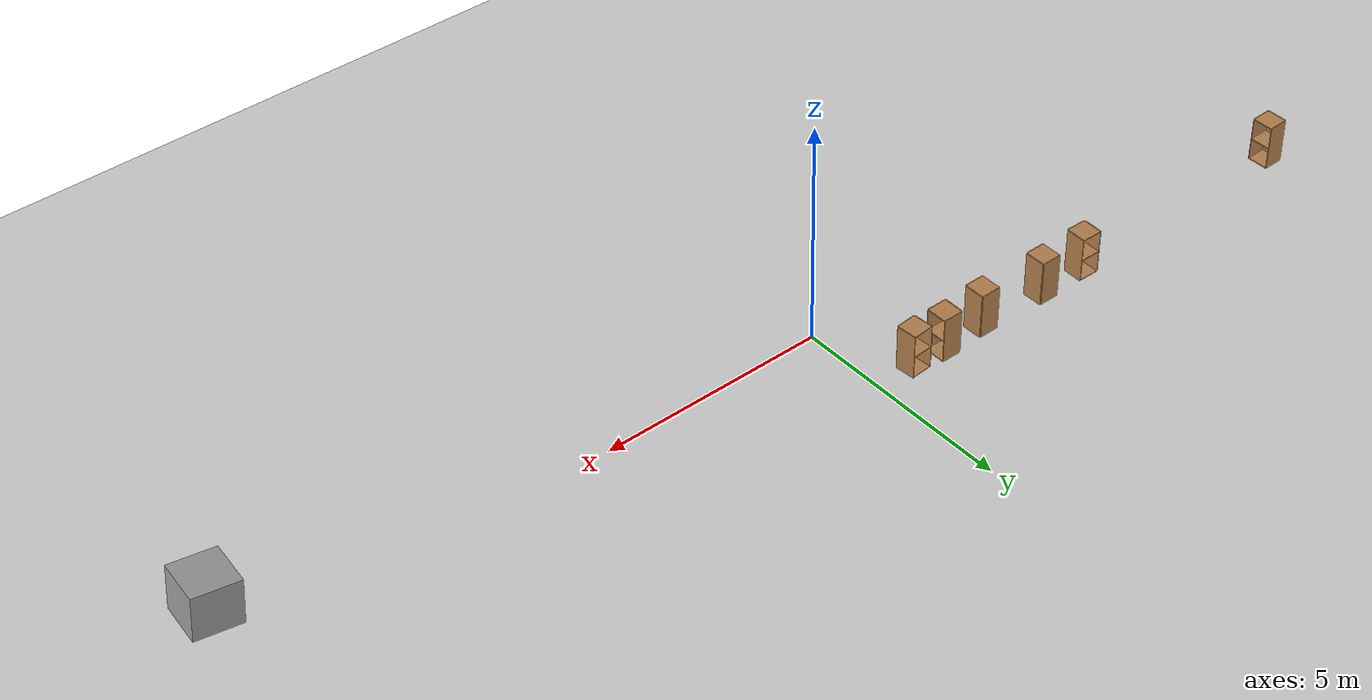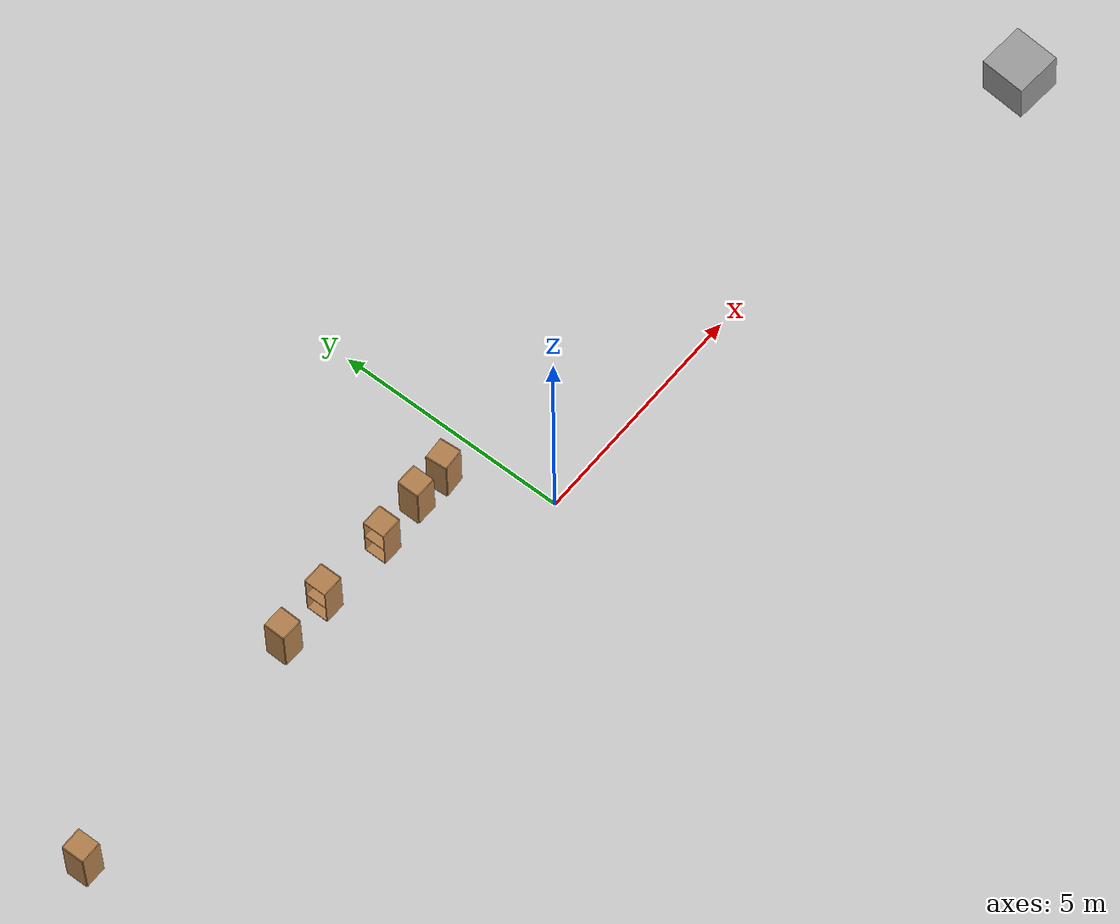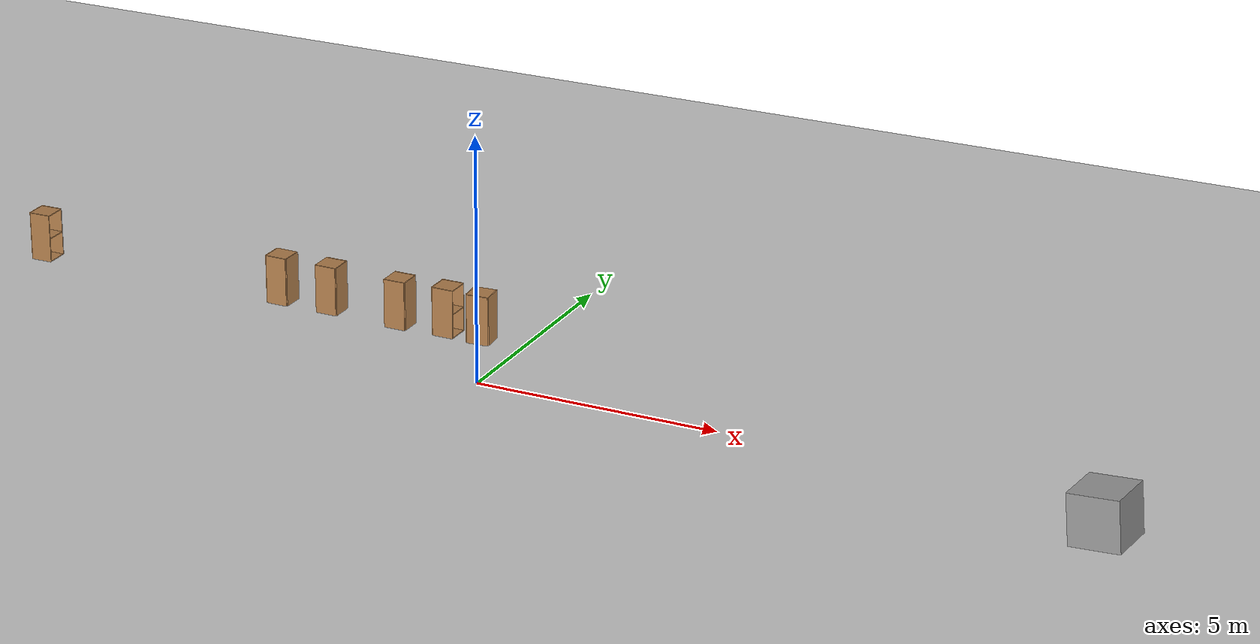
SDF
<sdf version="1.4">
 <world name="default">
  <light name="sun" type="directional">
   <pose>0 0 10 0 -0 0</pose>
   <diffuse>0.8 0.8 0.8 1</diffuse>
   <specular>0.2 0.2 0.2 1</specular>
   <attenuation>
    <range>1000</range>
    <constant>0.9</constant>
    <linear>0.01</linear>
    <quadratic>0.001</quadratic>
   </attenuation>
   <direction>-0.5 0.1 -0.9</direction>
  </light>
  <model name="ground_plane">
   <static>1</static>
   <link name="link">
    <collision name="collision">
     <geometry><plane><normal>0 0 1</normal><size>100 100</size></plane></geometry>
     <surface><friction><ode><mu>100</mu><mu2>50</mu2></ode></friction></surface>
    </collision>
    <visual name="visual">
     <cast_shadows>0</cast_shadows>
     <geometry><plane><normal>0 0 1</normal><size>100 100</size></plane></geometry>
     <material>
      <script><uri>file://media/materials/scripts/gazebo.material</uri><name>Gazebo/Grey</name></script>
     </material>
    </visual>
    <velocity_decay><linear>0</linear><angular>0</angular></velocity_decay>
   </link>
  </model>
  <physics type="ode">
   <max_step_size>0.001</max_step_size>
   <real_time_factor>1</real_time_factor>
   <real_time_update_rate>1000</real_time_update_rate>
   <gravity>0 0 -9.8</gravity>
  </physics>
  <scene><ambient>0.4 0.4 0.4 1</ambient><background>0.7 0.7 0.7 1</background><shadows>1</shadows></scene>
  <spherical_coordinates>
   <surface_model>EARTH_WGS84</surface_model>
   <latitude_deg>0</latitude_deg>
   <longitude_deg>0</longitude_deg>
   <elevation>0</elevation>
   <heading_deg>0</heading_deg>
  </spherical_coordinates>
  <model name="unit_box_1">
   <pose>12.8437 -1.21079 0.545439 1.3e-05 -0.095574 -0.101886</pose>
   <link name="link">
    <inertial>
     <mass>1</mass>
     <inertia><ixx>1</ixx><ixy>0</ixy><ixz>0</ixz><iyy>1</iyy><iyz>0</iyz><izz>1</izz></inertia>
    </inertial>
    <collision name="collision"><geometry><box><size>1 1 1</size></box></geometry></collision>
    <visual name="visual">
     <geometry><box><size>1 1 1</size></box></geometry>
     <material>
      <script><uri>file://media/materials/scripts/gazebo.material</uri><name>Gazebo/Grey</name></script>
     </material>
    </visual>
    <velocity_decay><linear>0</linear><angular>0</angular></velocity_decay>
   </link>
   <static>0</static>
  </model>
  <model name="cabinet">
   <static>1</static>
   <link name="cabinet_bottom_plate">
    <inertial>
     <pose>0 0 -1 0 -0 0</pose>
     <inertia><ixx>2.05</ixx><ixy>0</ixy><ixz>0</ixz><iyy>2.05</iyy><iyz>0</iyz><izz>2.05</izz></inertia>
     <mass>25</mass>
    </inertial>
    <collision name="cabinet_bottom_plate_geom">
     <pose>0 0 0.01 0 -0 0</pose>
     <geometry><box><size>0.45 0.45 0.02</size></box></geometry>
    </collision>
    <visual name="cabinet_bottom_plate_geom_visual">
     <pose>0 0 0.01 0 -0 0</pose>
     <geometry><box><size>0.45 0.45 0.02</size></box></geometry>
     <material>
      <script><uri>file://media/materials/scripts/gazebo.material</uri><name>Gazebo/Wood</name></script>
     </material>
    </visual>
    <collision name="cabinet_bottom_plate_geom_cabinet_back_plate">
     <pose>0.235 0 0.51 0 -0 0</pose>
     <geometry><box><size>0.02 0.45 1.02</size></box></geometry>
    </collision>
    <visual name="cabinet_bottom_plate_geom_cabinet_back_plate_visual">
     <pose>0.235 0 0.51 0 -0 0</pose>
     <geometry><box><size>0.02 0.45 1.02</size></box></geometry>
     <material>
      <script><uri>file://media/materials/scripts/gazebo.material</uri><name>Gazebo/Wood</name></script>
     </material>
    </visual>
    <collision name="cabinet_bottom_plate_geom_cabinet_left_plate">
     <pose>0 0.235 0.51 0 -0 0</pose>
     <geometry><box><size>0.45 0.02 1.02</size></box></geometry>
    </collision>
    <visual name="cabinet_bottom_plate_geom_cabinet_left_plate_visual">
     <pose>0 0.235 0.51 0 -0 0</pose>
     <geometry><box><size>0.45 0.02 1.02</size></box></geometry>
     <material>
      <script><uri>file://media/materials/scripts/gazebo.material</uri><name>Gazebo/Wood</name></script>
     </material>
    </visual>
    <collision name="cabinet_bottom_plate_geom_cabinet_middle_plate">
     <pose>0 0 0.51 0 -0 0</pose>
     <geometry><box><size>0.45 0.45 0.02</size></box></geometry>
    </collision>
    <visual name="cabinet_bottom_plate_geom_cabinet_middle_plate_visual">
     <pose>0 0 0.51 0 -0 0</pose>
     <geometry><box><size>0.45 0.45 0.02</size></box></geometry>
     <material>
      <script><uri>file://media/materials/scripts/gazebo.material</uri><name>Gazebo/Wood</name></script>
     </material>
    </visual>
    <collision name="cabinet_bottom_plate_geom_cabinet_right_plate">
     <pose>0 -0.235 0.51 0 -0 0</pose>
     <geometry><box><size>0.45 0.02 1.02</size></box></geometry>
    </collision>
    <visual name="cabinet_bottom_plate_geom_cabinet_right_plate_visual">
     <pose>0 -0.235 0.51 0 -0 0</pose>
     <geometry><box><size>0.45 0.02 1.02</size></box></geometry>
     <material>
      <script><uri>file://media/materials/scripts/gazebo.material</uri><name>Gazebo/Wood</name></script>
     </material>
    </visual>
    <collision name="cabinet_bottom_plate_geom_cabinet_top_plate">
     <pose>0 0 1.01 0 -0 0</pose>
     <geometry><box><size>0.45 0.45 0.02</size></box></geometry>
    </collision>
    <visual name="cabinet_bottom_plate_geom_cabinet_top_plate_visual">
     <pose>0 0 1.01 0 -0 0</pose>
     <geometry><box><size>0.45 0.45 0.02</size></box></geometry>
     <material>
      <script><uri>file://media/materials/scripts/gazebo.material</uri><name>Gazebo/Wood</name></script>
     </material>
    </visual>
    <velocity_decay><linear>0</linear><angular>0</angular></velocity_decay>
   </link>
   <pose>-11.0387 1.84992 0 0 0 -3.12417</pose>
  </model>
  <model name="cabinet_0">
   <static>1</static>
   <link name="cabinet_bottom_plate">
    <inertial>
     <pose>0 0 -1 0 -0 0</pose>
     <inertia><ixx>2.05</ixx><ixy>0</ixy><ixz>0</ixz><iyy>2.05</iyy><iyz>0</iyz><izz>2.05</izz></inertia>
     <mass>25</mass>
    </inertial>
    <collision name="cabinet_bottom_plate_geom">
     <pose>0 0 0.01 0 -0 0</pose>
     <geometry><box><size>0.45 0.45 0.02</size></box></geometry>
    </collision>
    <visual name="cabinet_bottom_plate_geom_visual">
     <pose>0 0 0.01 0 -0 0</pose>
     <geometry><box><size>0.45 0.45 0.02</size></box></geometry>
     <material>
      <script><uri>file://media/materials/scripts/gazebo.material</uri><name>Gazebo/Wood</name></script>
     </material>
    </visual>
    <collision name="cabinet_bottom_plate_geom_cabinet_back_plate">
     <pose>0.235 0 0.51 0 -0 0</pose>
     <geometry><box><size>0.02 0.45 1.02</size></box></geometry>
    </collision>
    <visual name="cabinet_bottom_plate_geom_cabinet_back_plate_visual">
     <pose>0.235 0 0.51 0 -0 0</pose>
     <geometry><box><size>0.02 0.45 1.02</size></box></geometry>
     <material>
      <script><uri>file://media/materials/scripts/gazebo.material</uri><name>Gazebo/Wood</name></script>
     </material>
    </visual>
    <collision name="cabinet_bottom_plate_geom_cabinet_left_plate">
     <pose>0 0.235 0.51 0 -0 0</pose>
     <geometry><box><size>0.45 0.02 1.02</size></box></geometry>
    </collision>
    <visual name="cabinet_bottom_plate_geom_cabinet_left_plate_visual">
     <pose>0 0.235 0.51 0 -0 0</pose>
     <geometry><box><size>0.45 0.02 1.02</size></box></geometry>
     <material>
      <script><uri>file://media/materials/scripts/gazebo.material</uri><name>Gazebo/Wood</name></script>
     </material>
    </visual>
    <collision name="cabinet_bottom_plate_geom_cabinet_middle_plate">
     <pose>0 0 0.51 0 -0 0</pose>
     <geometry><box><size>0.45 0.45 0.02</size></box></geometry>
    </collision>
    <visual name="cabinet_bottom_plate_geom_cabinet_middle_plate_visual">
     <pose>0 0 0.51 0 -0 0</pose>
     <geometry><box><size>0.45 0.45 0.02</size></box></geometry>
     <material>
      <script><uri>file://media/materials/scripts/gazebo.material</uri><name>Gazebo/Wood</name></script>
     </material>
    </visual>
    <collision name="cabinet_bottom_plate_geom_cabinet_right_plate">
     <pose>0 -0.235 0.51 0 -0 0</pose>
     <geometry><box><size>0.45 0.02 1.02</size></box></geometry>
    </collision>
    <visual name="cabinet_bottom_plate_geom_cabinet_right_plate_visual">
     <pose>0 -0.235 0.51 0 -0 0</pose>
     <geometry><box><size>0.45 0.02 1.02</size></box></geometry>
     <material>
      <script><uri>file://media/materials/scripts/gazebo.material</uri><name>Gazebo/Wood</name></script>
     </material>
    </visual>
    <collision name="cabinet_bottom_plate_geom_cabinet_top_plate">
     <pose>0 0 1.01 0 -0 0</pose>
     <geometry><box><size>0.45 0.45 0.02</size></box></geometry>
    </collision>
    <visual name="cabinet_bottom_plate_geom_cabinet_top_plate_visual">
     <pose>0 0 1.01 0 -0 0</pose>
     <geometry><box><size>0.45 0.45 0.02</size></box></geometry>
     <material>
      <script><uri>file://media/materials/scripts/gazebo.material</uri><name>Gazebo/Wood</name></script>
     </material>
    </visual>
    <velocity_decay><linear>0</linear><angular>0</angular></velocity_decay>
   </link>
   <pose>-5.4374 1.95236 0 0 0 -1.58982</pose>
  </model>
  <model name="cabinet_1">
   <static>1</static>
   <link name="cabinet_bottom_plate">
    <inertial>
     <pose>0 0 -1 0 -0 0</pose>
     <inertia><ixx>2.05</ixx><ixy>0</ixy><ixz>0</ixz><iyy>2.05</iyy><iyz>0</iyz><izz>2.05</izz></inertia>
     <mass>25</mass>
    </inertial>
    <collision name="cabinet_bottom_plate_geom">
     <pose>0 0 0.01 0 -0 0</pose>
     <geometry><box><size>0.45 0.45 0.02</size></box></geometry>
    </collision>
    <visual name="cabinet_bottom_plate_geom_visual">
     <pose>0 0 0.01 0 -0 0</pose>
     <geometry><box><size>0.45 0.45 0.02</size></box></geometry>
     <material>
      <script><uri>file://media/materials/scripts/gazebo.material</uri><name>Gazebo/Wood</name></script>
     </material>
    </visual>
    <collision name="cabinet_bottom_plate_geom_cabinet_back_plate">
     <pose>0.235 0 0.51 0 -0 0</pose>
     <geometry><box><size>0.02 0.45 1.02</size></box></geometry>
    </collision>
    <visual name="cabinet_bottom_plate_geom_cabinet_back_plate_visual">
     <pose>0.235 0 0.51 0 -0 0</pose>
     <geometry><box><size>0.02 0.45 1.02</size></box></geometry>
     <material>
      <script><uri>file://media/materials/scripts/gazebo.material</uri><name>Gazebo/Wood</name></script>
     </material>
    </visual>
    <collision name="cabinet_bottom_plate_geom_cabinet_left_plate">
     <pose>0 0.235 0.51 0 -0 0</pose>
     <geometry><box><size>0.45 0.02 1.02</size></box></geometry>
    </collision>
    <visual name="cabinet_bottom_plate_geom_cabinet_left_plate_visual">
     <pose>0 0.235 0.51 0 -0 0</pose>
     <geometry><box><size>0.45 0.02 1.02</size></box></geometry>
     <material>
      <script><uri>file://media/materials/scripts/gazebo.material</uri><name>Gazebo/Wood</name></script>
     </material>
    </visual>
    <collision name="cabinet_bottom_plate_geom_cabinet_middle_plate">
     <pose>0 0 0.51 0 -0 0</pose>
     <geometry><box><size>0.45 0.45 0.02</size></box></geometry>
    </collision>
    <visual name="cabinet_bottom_plate_geom_cabinet_middle_plate_visual">
     <pose>0 0 0.51 0 -0 0</pose>
     <geometry><box><size>0.45 0.45 0.02</size></box></geometry>
     <material>
      <script><uri>file://media/materials/scripts/gazebo.material</uri><name>Gazebo/Wood</name></script>
     </material>
    </visual>
    <collision name="cabinet_bottom_plate_geom_cabinet_right_plate">
     <pose>0 -0.235 0.51 0 -0 0</pose>
     <geometry><box><size>0.45 0.02 1.02</size></box></geometry>
    </collision>
    <visual name="cabinet_bottom_plate_geom_cabinet_right_plate_visual">
     <pose>0 -0.235 0.51 0 -0 0</pose>
     <geometry><box><size>0.45 0.02 1.02</size></box></geometry>
     <material>
      <script><uri>file://media/materials/scripts/gazebo.material</uri><name>Gazebo/Wood</name></script>
     </material>
    </visual>
    <collision name="cabinet_bottom_plate_geom_cabinet_top_plate">
     <pose>0 0 1.01 0 -0 0</pose>
     <geometry><box><size>0.45 0.45 0.02</size></box></geometry>
    </collision>
    <visual name="cabinet_bottom_plate_geom_cabinet_top_plate_visual">
     <pose>0 0 1.01 0 -0 0</pose>
     <geometry><box><size>0.45 0.45 0.02</size></box></geometry>
     <material>
      <script><uri>file://media/materials/scripts/gazebo.material</uri><name>Gazebo/Wood</name></script>
     </material>
    </visual>
    <velocity_decay><linear>0</linear><angular>0</angular></velocity_decay>
   </link>
   <pose>-1.65405 1.9466 0 0 -0 3.13437</pose>
  </model>
  <model name="cabinet_3">
   <static>1</static>
   <link name="cabinet_bottom_plate">
    <inertial>
     <pose>0 0 -1 0 -0 0</pose>
     <inertia><ixx>2.05</ixx><ixy>0</ixy><ixz>0</ixz><iyy>2.05</iyy><iyz>0</iyz><izz>2.05</izz></inertia>
     <mass>25</mass>
    </inertial>
    <collision name="cabinet_bottom_plate_geom">
     <pose>0 0 0.01 0 -0 0</pose>
     <geometry><box><size>0.45 0.45 0.02</size></box></geometry>
    </collision>
    <visual name="cabinet_bottom_plate_geom_visual">
     <pose>0 0 0.01 0 -0 0</pose>
     <geometry><box><size>0.45 0.45 0.02</size></box></geometry>
     <material>
      <script><uri>file://media/materials/scripts/gazebo.material</uri><name>Gazebo/Wood</name></script>
     </material>
    </visual>
    <collision name="cabinet_bottom_plate_geom_cabinet_back_plate">
     <pose>0.235 0 0.51 0 -0 0</pose>
     <geometry><box><size>0.02 0.45 1.02</size></box></geometry>
    </collision>
    <visual name="cabinet_bottom_plate_geom_cabinet_back_plate_visual">
     <pose>0.235 0 0.51 0 -0 0</pose>
     <geometry><box><size>0.02 0.45 1.02</size></box></geometry>
     <material>
      <script><uri>file://media/materials/scripts/gazebo.material</uri><name>Gazebo/Wood</name></script>
     </material>
    </visual>
    <collision name="cabinet_bottom_plate_geom_cabinet_left_plate">
     <pose>0 0.235 0.51 0 -0 0</pose>
     <geometry><box><size>0.45 0.02 1.02</size></box></geometry>
    </collision>
    <visual name="cabinet_bottom_plate_geom_cabinet_left_plate_visual">
     <pose>0 0.235 0.51 0 -0 0</pose>
     <geometry><box><size>0.45 0.02 1.02</size></box></geometry>
     <material>
      <script><uri>file://media/materials/scripts/gazebo.material</uri><name>Gazebo/Wood</name></script>
     </material>
    </visual>
    <collision name="cabinet_bottom_plate_geom_cabinet_middle_plate">
     <pose>0 0 0.51 0 -0 0</pose>
     <geometry><box><size>0.45 0.45 0.02</size></box></geometry>
    </collision>
    <visual name="cabinet_bottom_plate_geom_cabinet_middle_plate_visual">
     <pose>0 0 0.51 0 -0 0</pose>
     <geometry><box><size>0.45 0.45 0.02</size></box></geometry>
     <material>
      <script><uri>file://media/materials/scripts/gazebo.material</uri><name>Gazebo/Wood</name></script>
     </material>
    </visual>
    <collision name="cabinet_bottom_plate_geom_cabinet_right_plate">
     <pose>0 -0.235 0.51 0 -0 0</pose>
     <geometry><box><size>0.45 0.02 1.02</size></box></geometry>
    </collision>
    <visual name="cabinet_bottom_plate_geom_cabinet_right_plate_visual">
     <pose>0 -0.235 0.51 0 -0 0</pose>
     <geometry><box><size>0.45 0.02 1.02</size></box></geometry>
     <material>
      <script><uri>file://media/materials/scripts/gazebo.material</uri><name>Gazebo/Wood</name></script>
     </material>
    </visual>
    <collision name="cabinet_bottom_plate_geom_cabinet_top_plate">
     <pose>0 0 1.01 0 -0 0</pose>
     <geometry><box><size>0.45 0.45 0.02</size></box></geometry>
    </collision>
    <visual name="cabinet_bottom_plate_geom_cabinet_top_plate_visual">
     <pose>0 0 1.01 0 -0 0</pose>
     <geometry><box><size>0.45 0.45 0.02</size></box></geometry>
     <material>
      <script><uri>file://media/materials/scripts/gazebo.material</uri><name>Gazebo/Wood</name></script>
     </material>
    </visual>
    <velocity_decay><linear>0</linear><angular>0</angular></velocity_decay>
   </link>
   <pose>-0.89702 1.9214 0 0 0 -1.49453</pose>
  </model>
  <model name="cabinet_4">
   <static>1</static>
   <link name="cabinet_bottom_plate">
    <inertial>
     <pose>0 0 -1 0 -0 0</pose>
     <inertia><ixx>2.05</ixx><ixy>0</ixy><ixz>0</ixz><iyy>2.05</iyy><iyz>0</iyz><izz>2.05</izz></inertia>
     <mass>25</mass>
    </inertial>
    <collision name="cabinet_bottom_plate_geom">
     <pose>0 0 0.01 0 -0 0</pose>
     <geometry><box><size>0.45 0.45 0.02</size></box></geometry>
    </collision>
    <visual name="cabinet_bottom_plate_geom_visual">
     <pose>0 0 0.01 0 -0 0</pose>
     <geometry><box><size>0.45 0.45 0.02</size></box></geometry>
     <material>
      <script><uri>file://media/materials/scripts/gazebo.material</uri><name>Gazebo/Wood</name></script>
     </material>
    </visual>
    <collision name="cabinet_bottom_plate_geom_cabinet_back_plate">
     <pose>0.235 0 0.51 0 -0 0</pose>
     <geometry><box><size>0.02 0.45 1.02</size></box></geometry>
    </collision>
    <visual name="cabinet_bottom_plate_geom_cabinet_back_plate_visual">
     <pose>0.235 0 0.51 0 -0 0</pose>
     <geometry><box><size>0.02 0.45 1.02</size></box></geometry>
     <material>
      <script><uri>file://media/materials/scripts/gazebo.material</uri><name>Gazebo/Wood</name></script>
     </material>
    </visual>
    <collision name="cabinet_bottom_plate_geom_cabinet_left_plate">
     <pose>0 0.235 0.51 0 -0 0</pose>
     <geometry><box><size>0.45 0.02 1.02</size></box></geometry>
    </collision>
    <visual name="cabinet_bottom_plate_geom_cabinet_left_plate_visual">
     <pose>0 0.235 0.51 0 -0 0</pose>
     <geometry><box><size>0.45 0.02 1.02</size></box></geometry>
     <material>
      <script><uri>file://media/materials/scripts/gazebo.material</uri><name>Gazebo/Wood</name></script>
     </material>
    </visual>
    <collision name="cabinet_bottom_plate_geom_cabinet_middle_plate">
     <pose>0 0 0.51 0 -0 0</pose>
     <geometry><box><size>0.45 0.45 0.02</size></box></geometry>
    </collision>
    <visual name="cabinet_bottom_plate_geom_cabinet_middle_plate_visual">
     <pose>0 0 0.51 0 -0 0</pose>
     <geometry><box><size>0.45 0.45 0.02</size></box></geometry>
     <material>
      <script><uri>file://media/materials/scripts/gazebo.material</uri><name>Gazebo/Wood</name></script>
     </material>
    </visual>
    <collision name="cabinet_bottom_plate_geom_cabinet_right_plate">
     <pose>0 -0.235 0.51 0 -0 0</pose>
     <geometry><box><size>0.45 0.02 1.02</size></box></geometry>
    </collision>
    <visual name="cabinet_bottom_plate_geom_cabinet_right_plate_visual">
     <pose>0 -0.235 0.51 0 -0 0</pose>
     <geometry><box><size>0.45 0.02 1.02</size></box></geometry>
     <material>
      <script><uri>file://media/materials/scripts/gazebo.material</uri><name>Gazebo/Wood</name></script>
     </material>
    </visual>
    <collision name="cabinet_bottom_plate_geom_cabinet_top_plate">
     <pose>0 0 1.01 0 -0 0</pose>
     <geometry><box><size>0.45 0.45 0.02</size></box></geometry>
    </collision>
    <visual name="cabinet_bottom_plate_geom_cabinet_top_plate_visual">
     <pose>0 0 1.01 0 -0 0</pose>
     <geometry><box><size>0.45 0.45 0.02</size></box></geometry>
     <material>
      <script><uri>file://media/materials/scripts/gazebo.material</uri><name>Gazebo/Wood</name></script>
     </material>
    </visual>
    <velocity_decay><linear>0</linear><angular>0</angular></velocity_decay>
   </link>
   <pose>-2.70807 1.89287 0 0 -0 0</pose>
  </model>
  <model name="cabinet_5">
   <static>1</static>
   <link name="cabinet_bottom_plate">
    <inertial>
     <pose>0 0 -1 0 -0 0</pose>
     <inertia><ixx>2.05</ixx><ixy>0</ixy><ixz>0</ixz><iyy>2.05</iyy><iyz>0</iyz><izz>2.05</izz></inertia>
     <mass>25</mass>
    </inertial>
    <collision name="cabinet_bottom_plate_geom">
     <pose>0 0 0.01 0 -0 0</pose>
     <geometry><box><size>0.45 0.45 0.02</size></box></geometry>
    </collision>
    <visual name="cabinet_bottom_plate_geom_visual">
     <pose>0 0 0.01 0 -0 0</pose>
     <geometry><box><size>0.45 0.45 0.02</size></box></geometry>
     <material>
      <script><uri>file://media/materials/scripts/gazebo.material</uri><name>Gazebo/Wood</name></script>
     </material>
    </visual>
    <collision name="cabinet_bottom_plate_geom_cabinet_back_plate">
     <pose>0.235 0 0.51 0 -0 0</pose>
     <geometry><box><size>0.02 0.45 1.02</size></box></geometry>
    </collision>
    <visual name="cabinet_bottom_plate_geom_cabinet_back_plate_visual">
     <pose>0.235 0 0.51 0 -0 0</pose>
     <geometry><box><size>0.02 0.45 1.02</size></box></geometry>
     <material>
      <script><uri>file://media/materials/scripts/gazebo.material</uri><name>Gazebo/Wood</name></script>
     </material>
    </visual>
    <collision name="cabinet_bottom_plate_geom_cabinet_left_plate">
     <pose>0 0.235 0.51 0 -0 0</pose>
     <geometry><box><size>0.45 0.02 1.02</size></box></geometry>
    </collision>
    <visual name="cabinet_bottom_plate_geom_cabinet_left_plate_visual">
     <pose>0 0.235 0.51 0 -0 0</pose>
     <geometry><box><size>0.45 0.02 1.02</size></box></geometry>
     <material>
      <script><uri>file://media/materials/scripts/gazebo.material</uri><name>Gazebo/Wood</name></script>
     </material>
    </visual>
    <collision name="cabinet_bottom_plate_geom_cabinet_middle_plate">
     <pose>0 0 0.51 0 -0 0</pose>
     <geometry><box><size>0.45 0.45 0.02</size></box></geometry>
    </collision>
    <visual name="cabinet_bottom_plate_geom_cabinet_middle_plate_visual">
     <pose>0 0 0.51 0 -0 0</pose>
     <geometry><box><size>0.45 0.45 0.02</size></box></geometry>
     <material>
      <script><uri>file://media/materials/scripts/gazebo.material</uri><name>Gazebo/Wood</name></script>
     </material>
    </visual>
    <collision name="cabinet_bottom_plate_geom_cabinet_right_plate">
     <pose>0 -0.235 0.51 0 -0 0</pose>
     <geometry><box><size>0.45 0.02 1.02</size></box></geometry>
    </collision>
    <visual name="cabinet_bottom_plate_geom_cabinet_right_plate_visual">
     <pose>0 -0.235 0.51 0 -0 0</pose>
     <geometry><box><size>0.45 0.02 1.02</size></box></geometry>
     <material>
      <script><uri>file://media/materials/scripts/gazebo.material</uri><name>Gazebo/Wood</name></script>
     </material>
    </visual>
    <collision name="cabinet_bottom_plate_geom_cabinet_top_plate">
     <pose>0 0 1.01 0 -0 0</pose>
     <geometry><box><size>0.45 0.45 0.02</size></box></geometry>
    </collision>
    <visual name="cabinet_bottom_plate_geom_cabinet_top_plate_visual">
     <pose>0 0 1.01 0 -0 0</pose>
     <geometry><box><size>0.45 0.45 0.02</size></box></geometry>
     <material>
      <script><uri>file://media/materials/scripts/gazebo.material</uri><name>Gazebo/Wood</name></script>
     </material>
    </visual>
    <velocity_decay><linear>0</linear><angular>0</angular></velocity_decay>
   </link>
   <pose>-4.30032 1.94915 0 0 -0 0</pose>
  </model>
 </world>
</sdf>
